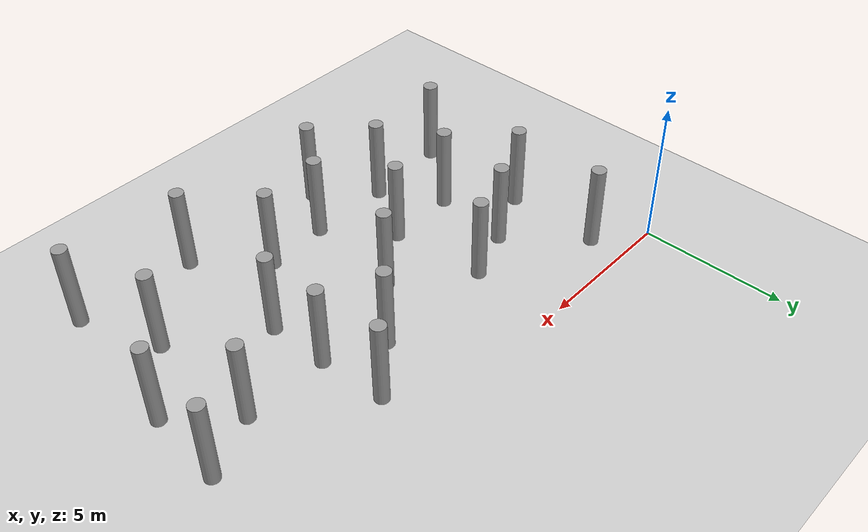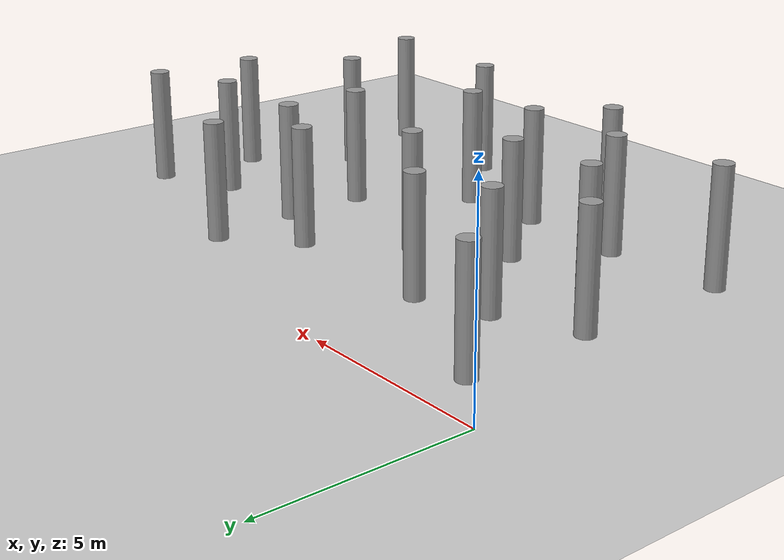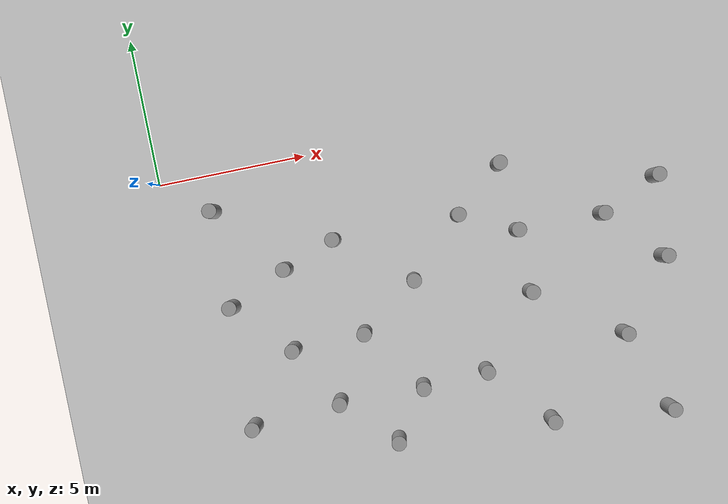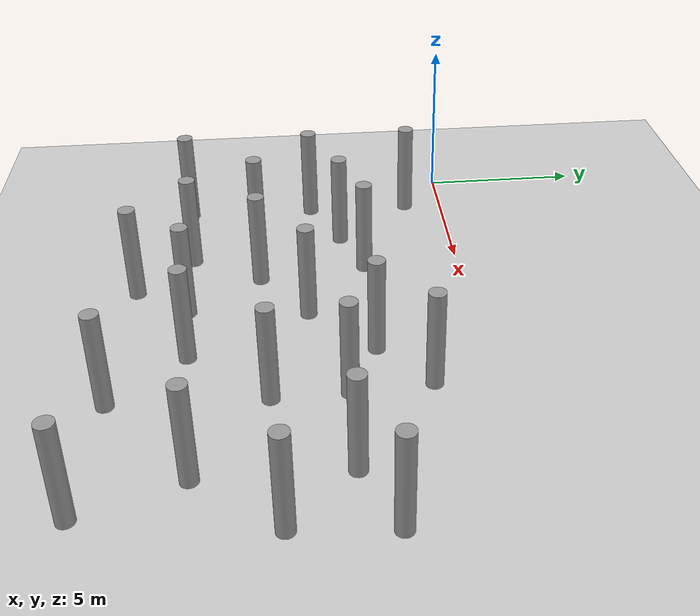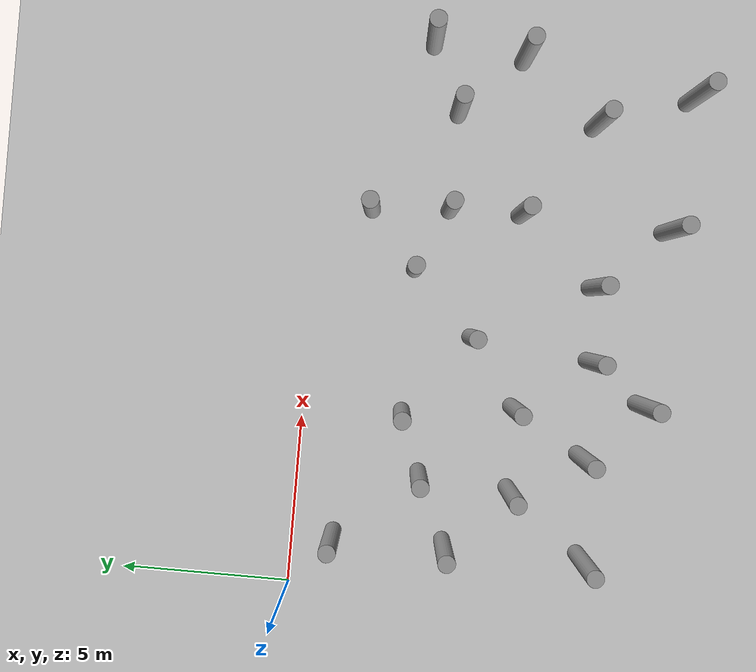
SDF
<sdf version="1.6">
 <world name="default">
  <model name="ground_plane">
   <static>1</static>
   <link name="link">
    <collision name="collision">
     <geometry><plane><normal>0 0 1</normal><size>100 100</size></plane></geometry>
     <surface><friction><ode><mu>100</mu><mu2>50</mu2></ode></friction></surface>
    </collision>
    <visual name="visual">
     <cast_shadows>0</cast_shadows>
     <geometry><plane><normal>0 0 1</normal><size>100 100</size></plane></geometry>
     <material>
      <script><uri>file://media/materials/scripts/gazebo.material</uri><name>Gazebo/Grey</name></script>
     </material>
    </visual>
   </link>
  </model>
  <model name="LjjForest">
   <link name="link_0">
    <inertial>
     <mass>1</mass>
     <inertia><ixx>0.145833</ixx><ixy>0</ixy><ixz>0</ixz><iyy>0.145833</iyy><iyz>0</iyz><izz>0.125</izz></inertia>
    </inertial>
    <pose>-5.02717 0.116957 0 0 -0 0</pose>
    <visual name="visual">
     <geometry><cylinder><radius>0.25</radius><length>3</length></cylinder></geometry>
     <material>
      <lighting>1</lighting>
      <script><uri>file://media/materials/scripts/gazebo.material</uri><name>Gazebo/Grey</name></script>
      <shader type="vertex"><normal_map>__default__</normal_map></shader>
      <ambient>0.3 0.3 0.3 1</ambient>
      <diffuse>0.7 0.7 0.7 1</diffuse>
      <specular>0.01 0.01 0.01 1</specular>
      <emissive>0 0 0 1</emissive>
     </material>
    </visual>
    <collision name="collision">
     <geometry><cylinder><radius>0.25</radius><length>3</length></cylinder></geometry>
     <surface>
      <friction>
       <ode><mu>1</mu><mu2>1</mu2><fdir1>0 0 0</fdir1><slip1>0</slip1><slip2>0</slip2></ode>
       <torsional>
        <coefficient>1</coefficient>
        <patch_radius>0</patch_radius>
        <surface_radius>0</surface_radius>
        <use_patch_radius>1</use_patch_radius>
        <ode><slip>0</slip></ode>
       </torsional>
      </friction>
      <bounce><restitution_coefficient>0</restitution_coefficient><threshold>1e+06</threshold></bounce>
      <contact>
       <collide_without_contact>0</collide_without_contact>
       <collide_without_contact_bitmask>1</collide_without_contact_bitmask>
       <collide_bitmask>1</collide_bitmask>
       <ode>
        <soft_cfm>0</soft_cfm>
        <soft_erp>0.2</soft_erp>
        <kp>1e+13</kp>
        <kd>1</kd>
        <max_vel>0.01</max_vel>
        <min_depth>0</min_depth>
       </ode>
       <bullet>
        <split_impulse>1</split_impulse>
        <split_impulse_penetration_threshold>-0.01</split_impulse_penetration_threshold>
        <soft_cfm>0</soft_cfm>
        <soft_erp>0.2</soft_erp>
        <kp>1e+13</kp>
        <kd>1</kd>
       </bullet>
      </contact>
     </surface>
    </collision>
   </link>
   <link name="link_0_clone_1">
    <inertial>
     <mass>1</mass>
     <inertia><ixx>0.145833</ixx><ixy>0</ixy><ixz>0</ixz><iyy>0.145833</iyy><iyz>0</iyz><izz>0.125</izz></inertia>
    </inertial>
    <pose>-1.2394 -1.64814 0 0 -0 0</pose>
    <visual name="visual">
     <geometry><cylinder><radius>0.25</radius><length>3</length></cylinder></geometry>
     <material>
      <lighting>1</lighting>
      <script><uri>file://media/materials/scripts/gazebo.material</uri><name>Gazebo/Grey</name></script>
      <shader type="vertex"><normal_map>__default__</normal_map></shader>
      <ambient>0.3 0.3 0.3 1</ambient>
      <diffuse>0.7 0.7 0.7 1</diffuse>
      <specular>0.01 0.01 0.01 1</specular>
      <emissive>0 0 0 1</emissive>
     </material>
    </visual>
    <collision name="collision">
     <geometry><cylinder><radius>0.25</radius><length>3</length></cylinder></geometry>
     <surface>
      <friction>
       <ode><mu>1</mu><mu2>1</mu2><fdir1>0 0 0</fdir1><slip1>0</slip1><slip2>0</slip2></ode>
       <torsional>
        <coefficient>1</coefficient>
        <patch_radius>0</patch_radius>
        <surface_radius>0</surface_radius>
        <use_patch_radius>1</use_patch_radius>
        <ode><slip>0</slip></ode>
       </torsional>
      </friction>
      <bounce><restitution_coefficient>0</restitution_coefficient><threshold>1e+06</threshold></bounce>
      <contact>
       <collide_without_contact>0</collide_without_contact>
       <collide_without_contact_bitmask>1</collide_without_contact_bitmask>
       <collide_bitmask>1</collide_bitmask>
       <ode>
        <soft_cfm>0</soft_cfm>
        <soft_erp>0.2</soft_erp>
        <kp>1e+13</kp>
        <kd>1</kd>
        <max_vel>0.01</max_vel>
        <min_depth>0</min_depth>
       </ode>
       <bullet>
        <split_impulse>1</split_impulse>
        <split_impulse_penetration_threshold>-0.01</split_impulse_penetration_threshold>
        <soft_cfm>0</soft_cfm>
        <soft_erp>0.2</soft_erp>
        <kp>1e+13</kp>
        <kd>1</kd>
       </bullet>
      </contact>
     </surface>
    </collision>
   </link>
   <link name="link_0_clone_10">
    <inertial>
     <mass>1</mass>
     <inertia><ixx>0.145833</ixx><ixy>0</ixy><ixz>0</ixz><iyy>0.145833</iyy><iyz>0</iyz><izz>0.125</izz></inertia>
    </inertial>
    <pose>4.92442 -4.7051 0 0 -0 0</pose>
    <visual name="visual">
     <geometry><cylinder><radius>0.25</radius><length>3</length></cylinder></geometry>
     <material>
      <lighting>1</lighting>
      <script><uri>file://media/materials/scripts/gazebo.material</uri><name>Gazebo/Grey</name></script>
      <shader type="vertex"><normal_map>__default__</normal_map></shader>
      <ambient>0.3 0.3 0.3 1</ambient>
      <diffuse>0.7 0.7 0.7 1</diffuse>
      <specular>0.01 0.01 0.01 1</specular>
      <emissive>0 0 0 1</emissive>
     </material>
    </visual>
    <collision name="collision">
     <geometry><cylinder><radius>0.25</radius><length>3</length></cylinder></geometry>
     <surface>
      <friction>
       <ode><mu>1</mu><mu2>1</mu2><fdir1>0 0 0</fdir1><slip1>0</slip1><slip2>0</slip2></ode>
       <torsional>
        <coefficient>1</coefficient>
        <patch_radius>0</patch_radius>
        <surface_radius>0</surface_radius>
        <use_patch_radius>1</use_patch_radius>
        <ode><slip>0</slip></ode>
       </torsional>
      </friction>
      <bounce><restitution_coefficient>0</restitution_coefficient><threshold>1e+06</threshold></bounce>
      <contact>
       <collide_without_contact>0</collide_without_contact>
       <collide_without_contact_bitmask>1</collide_without_contact_bitmask>
       <collide_bitmask>1</collide_bitmask>
       <ode>
        <soft_cfm>0</soft_cfm>
        <soft_erp>0.2</soft_erp>
        <kp>1e+13</kp>
        <kd>1</kd>
        <max_vel>0.01</max_vel>
        <min_depth>0</min_depth>
       </ode>
       <bullet>
        <split_impulse>1</split_impulse>
        <split_impulse_penetration_threshold>-0.01</split_impulse_penetration_threshold>
        <soft_cfm>0</soft_cfm>
        <soft_erp>0.2</soft_erp>
        <kp>1e+13</kp>
        <kd>1</kd>
       </bullet>
      </contact>
     </surface>
    </collision>
   </link>
   <link name="link_0_clone_11">
    <inertial>
     <mass>1</mass>
     <inertia><ixx>0.145833</ixx><ixy>0</ixy><ixz>0</ixz><iyy>0.145833</iyy><iyz>0</iyz><izz>0.125</izz></inertia>
    </inertial>
    <pose>2.92414 -7.00263 0 0 -0 0</pose>
    <visual name="visual">
     <geometry><cylinder><radius>0.25</radius><length>3</length></cylinder></geometry>
     <material>
      <lighting>1</lighting>
      <script><uri>file://media/materials/scripts/gazebo.material</uri><name>Gazebo/Grey</name></script>
      <shader type="vertex"><normal_map>__default__</normal_map></shader>
      <ambient>0.3 0.3 0.3 1</ambient>
      <diffuse>0.7 0.7 0.7 1</diffuse>
      <specular>0.01 0.01 0.01 1</specular>
      <emissive>0 0 0 1</emissive>
     </material>
    </visual>
    <collision name="collision">
     <geometry><cylinder><radius>0.25</radius><length>3</length></cylinder></geometry>
     <surface>
      <friction>
       <ode><mu>1</mu><mu2>1</mu2><fdir1>0 0 0</fdir1><slip1>0</slip1><slip2>0</slip2></ode>
       <torsional>
        <coefficient>1</coefficient>
        <patch_radius>0</patch_radius>
        <surface_radius>0</surface_radius>
        <use_patch_radius>1</use_patch_radius>
        <ode><slip>0</slip></ode>
       </torsional>
      </friction>
      <bounce><restitution_coefficient>0</restitution_coefficient><threshold>1e+06</threshold></bounce>
      <contact>
       <collide_without_contact>0</collide_without_contact>
       <collide_without_contact_bitmask>1</collide_without_contact_bitmask>
       <collide_bitmask>1</collide_bitmask>
       <ode>
        <soft_cfm>0</soft_cfm>
        <soft_erp>0.2</soft_erp>
        <kp>1e+13</kp>
        <kd>1</kd>
        <max_vel>0.01</max_vel>
        <min_depth>0</min_depth>
       </ode>
       <bullet>
        <split_impulse>1</split_impulse>
        <split_impulse_penetration_threshold>-0.01</split_impulse_penetration_threshold>
        <soft_cfm>0</soft_cfm>
        <soft_erp>0.2</soft_erp>
        <kp>1e+13</kp>
        <kd>1</kd>
       </bullet>
      </contact>
     </surface>
    </collision>
   </link>
   <link name="link_0_clone_12">
    <inertial>
     <mass>1</mass>
     <inertia><ixx>0.145833</ixx><ixy>0</ixy><ixz>0</ixz><iyy>0.145833</iyy><iyz>0</iyz><izz>0.125</izz></inertia>
    </inertial>
    <pose>4.76112 -9.06376 0 0 -0 0</pose>
    <visual name="visual">
     <geometry><cylinder><radius>0.25</radius><length>3</length></cylinder></geometry>
     <material>
      <lighting>1</lighting>
      <script><uri>file://media/materials/scripts/gazebo.material</uri><name>Gazebo/Grey</name></script>
      <shader type="vertex"><normal_map>__default__</normal_map></shader>
      <ambient>0.3 0.3 0.3 1</ambient>
      <diffuse>0.7 0.7 0.7 1</diffuse>
      <specular>0.01 0.01 0.01 1</specular>
      <emissive>0 0 0 1</emissive>
     </material>
    </visual>
    <collision name="collision">
     <geometry><cylinder><radius>0.25</radius><length>3</length></cylinder></geometry>
     <surface>
      <friction>
       <ode><mu>1</mu><mu2>1</mu2><fdir1>0 0 0</fdir1><slip1>0</slip1><slip2>0</slip2></ode>
       <torsional>
        <coefficient>1</coefficient>
        <patch_radius>0</patch_radius>
        <surface_radius>0</surface_radius>
        <use_patch_radius>1</use_patch_radius>
        <ode><slip>0</slip></ode>
       </torsional>
      </friction>
      <bounce><restitution_coefficient>0</restitution_coefficient><threshold>1e+06</threshold></bounce>
      <contact>
       <collide_without_contact>0</collide_without_contact>
       <collide_without_contact_bitmask>1</collide_without_contact_bitmask>
       <collide_bitmask>1</collide_bitmask>
       <ode>
        <soft_cfm>0</soft_cfm>
        <soft_erp>0.2</soft_erp>
        <kp>1e+13</kp>
        <kd>1</kd>
        <max_vel>0.01</max_vel>
        <min_depth>0</min_depth>
       </ode>
       <bullet>
        <split_impulse>1</split_impulse>
        <split_impulse_penetration_threshold>-0.01</split_impulse_penetration_threshold>
        <soft_cfm>0</soft_cfm>
        <soft_erp>0.2</soft_erp>
        <kp>1e+13</kp>
        <kd>1</kd>
       </bullet>
      </contact>
     </surface>
    </collision>
   </link>
   <link name="link_0_clone_13">
    <inertial>
     <mass>1</mass>
     <inertia><ixx>0.145833</ixx><ixy>0</ixy><ixz>0</ixz><iyy>0.145833</iyy><iyz>0</iyz><izz>0.125</izz></inertia>
    </inertial>
    <pose>0.731055 -7.10049 0 0 -0 0</pose>
    <visual name="visual">
     <geometry><cylinder><radius>0.25</radius><length>3</length></cylinder></geometry>
     <material>
      <lighting>1</lighting>
      <script><uri>file://media/materials/scripts/gazebo.material</uri><name>Gazebo/Grey</name></script>
      <shader type="vertex"><normal_map>__default__</normal_map></shader>
      <ambient>0.3 0.3 0.3 1</ambient>
      <diffuse>0.7 0.7 0.7 1</diffuse>
      <specular>0.01 0.01 0.01 1</specular>
      <emissive>0 0 0 1</emissive>
     </material>
    </visual>
    <collision name="collision">
     <geometry><cylinder><radius>0.25</radius><length>3</length></cylinder></geometry>
     <surface>
      <friction>
       <ode><mu>1</mu><mu2>1</mu2><fdir1>0 0 0</fdir1><slip1>0</slip1><slip2>0</slip2></ode>
       <torsional>
        <coefficient>1</coefficient>
        <patch_radius>0</patch_radius>
        <surface_radius>0</surface_radius>
        <use_patch_radius>1</use_patch_radius>
        <ode><slip>0</slip></ode>
       </torsional>
      </friction>
      <bounce><restitution_coefficient>0</restitution_coefficient><threshold>1e+06</threshold></bounce>
      <contact>
       <collide_without_contact>0</collide_without_contact>
       <collide_without_contact_bitmask>1</collide_without_contact_bitmask>
       <collide_bitmask>1</collide_bitmask>
       <ode>
        <soft_cfm>0</soft_cfm>
        <soft_erp>0.2</soft_erp>
        <kp>1e+13</kp>
        <kd>1</kd>
        <max_vel>0.01</max_vel>
        <min_depth>0</min_depth>
       </ode>
       <bullet>
        <split_impulse>1</split_impulse>
        <split_impulse_penetration_threshold>-0.01</split_impulse_penetration_threshold>
        <soft_cfm>0</soft_cfm>
        <soft_erp>0.2</soft_erp>
        <kp>1e+13</kp>
        <kd>1</kd>
       </bullet>
      </contact>
     </surface>
    </collision>
   </link>
   <link name="link_0_clone_14">
    <inertial>
     <mass>1</mass>
     <inertia><ixx>0.145833</ixx><ixy>0</ixy><ixz>0</ixz><iyy>0.145833</iyy><iyz>0</iyz><izz>0.125</izz></inertia>
    </inertial>
    <pose>-0.840028 -4.93267 0 0 -0 0</pose>
    <visual name="visual">
     <geometry><cylinder><radius>0.25</radius><length>3</length></cylinder></geometry>
     <material>
      <lighting>1</lighting>
      <script><uri>file://media/materials/scripts/gazebo.material</uri><name>Gazebo/Grey</name></script>
      <shader type="vertex"><normal_map>__default__</normal_map></shader>
      <ambient>0.3 0.3 0.3 1</ambient>
      <diffuse>0.7 0.7 0.7 1</diffuse>
      <specular>0.01 0.01 0.01 1</specular>
      <emissive>0 0 0 1</emissive>
     </material>
    </visual>
    <collision name="collision">
     <geometry><cylinder><radius>0.25</radius><length>3</length></cylinder></geometry>
     <surface>
      <friction>
       <ode><mu>1</mu><mu2>1</mu2><fdir1>0 0 0</fdir1><slip1>0</slip1><slip2>0</slip2></ode>
       <torsional>
        <coefficient>1</coefficient>
        <patch_radius>0</patch_radius>
        <surface_radius>0</surface_radius>
        <use_patch_radius>1</use_patch_radius>
        <ode><slip>0</slip></ode>
       </torsional>
      </friction>
      <bounce><restitution_coefficient>0</restitution_coefficient><threshold>1e+06</threshold></bounce>
      <contact>
       <collide_without_contact>0</collide_without_contact>
       <collide_without_contact_bitmask>1</collide_without_contact_bitmask>
       <collide_bitmask>1</collide_bitmask>
       <ode>
        <soft_cfm>0</soft_cfm>
        <soft_erp>0.2</soft_erp>
        <kp>1e+13</kp>
        <kd>1</kd>
        <max_vel>0.01</max_vel>
        <min_depth>0</min_depth>
       </ode>
       <bullet>
        <split_impulse>1</split_impulse>
        <split_impulse_penetration_threshold>-0.01</split_impulse_penetration_threshold>
        <soft_cfm>0</soft_cfm>
        <soft_erp>0.2</soft_erp>
        <kp>1e+13</kp>
        <kd>1</kd>
       </bullet>
      </contact>
     </surface>
    </collision>
   </link>
   <link name="link_0_clone_15">
    <inertial>
     <mass>1</mass>
     <inertia><ixx>0.145833</ixx><ixy>0</ixy><ixz>0</ixz><iyy>0.145833</iyy><iyz>0</iyz><izz>0.125</izz></inertia>
    </inertial>
    <pose>-3.03254 -2.29236 0 0 -0 0</pose>
    <visual name="visual">
     <geometry><cylinder><radius>0.25</radius><length>3</length></cylinder></geometry>
     <material>
      <lighting>1</lighting>
      <script><uri>file://media/materials/scripts/gazebo.material</uri><name>Gazebo/Grey</name></script>
      <shader type="vertex"><normal_map>__default__</normal_map></shader>
      <ambient>0.3 0.3 0.3 1</ambient>
      <diffuse>0.7 0.7 0.7 1</diffuse>
      <specular>0.01 0.01 0.01 1</specular>
      <emissive>0 0 0 1</emissive>
     </material>
    </visual>
    <collision name="collision">
     <geometry><cylinder><radius>0.25</radius><length>3</length></cylinder></geometry>
     <surface>
      <friction>
       <ode><mu>1</mu><mu2>1</mu2><fdir1>0 0 0</fdir1><slip1>0</slip1><slip2>0</slip2></ode>
       <torsional>
        <coefficient>1</coefficient>
        <patch_radius>0</patch_radius>
        <surface_radius>0</surface_radius>
        <use_patch_radius>1</use_patch_radius>
        <ode><slip>0</slip></ode>
       </torsional>
      </friction>
      <bounce><restitution_coefficient>0</restitution_coefficient><threshold>1e+06</threshold></bounce>
      <contact>
       <collide_without_contact>0</collide_without_contact>
       <collide_without_contact_bitmask>1</collide_without_contact_bitmask>
       <collide_bitmask>1</collide_bitmask>
       <ode>
        <soft_cfm>0</soft_cfm>
        <soft_erp>0.2</soft_erp>
        <kp>1e+13</kp>
        <kd>1</kd>
        <max_vel>0.01</max_vel>
        <min_depth>0</min_depth>
       </ode>
       <bullet>
        <split_impulse>1</split_impulse>
        <split_impulse_penetration_threshold>-0.01</split_impulse_penetration_threshold>
        <soft_cfm>0</soft_cfm>
        <soft_erp>0.2</soft_erp>
        <kp>1e+13</kp>
        <kd>1</kd>
       </bullet>
      </contact>
     </surface>
    </collision>
   </link>
   <link name="link_0_clone_16">
    <inertial>
     <mass>1</mass>
     <inertia><ixx>0.145833</ixx><ixy>0</ixy><ixz>0</ixz><iyy>0.145833</iyy><iyz>0</iyz><izz>0.125</izz></inertia>
    </inertial>
    <pose>-5.04025 -3.1815 0 0 -0 0</pose>
    <visual name="visual">
     <geometry><cylinder><radius>0.25</radius><length>3</length></cylinder></geometry>
     <material>
      <lighting>1</lighting>
      <script><uri>file://media/materials/scripts/gazebo.material</uri><name>Gazebo/Grey</name></script>
      <shader type="vertex"><normal_map>__default__</normal_map></shader>
      <ambient>0.3 0.3 0.3 1</ambient>
      <diffuse>0.7 0.7 0.7 1</diffuse>
      <specular>0.01 0.01 0.01 1</specular>
      <emissive>0 0 0 1</emissive>
     </material>
    </visual>
    <collision name="collision">
     <geometry><cylinder><radius>0.25</radius><length>3</length></cylinder></geometry>
     <surface>
      <friction>
       <ode><mu>1</mu><mu2>1</mu2><fdir1>0 0 0</fdir1><slip1>0</slip1><slip2>0</slip2></ode>
       <torsional>
        <coefficient>1</coefficient>
        <patch_radius>0</patch_radius>
        <surface_radius>0</surface_radius>
        <use_patch_radius>1</use_patch_radius>
        <ode><slip>0</slip></ode>
       </torsional>
      </friction>
      <bounce><restitution_coefficient>0</restitution_coefficient><threshold>1e+06</threshold></bounce>
      <contact>
       <collide_without_contact>0</collide_without_contact>
       <collide_without_contact_bitmask>1</collide_without_contact_bitmask>
       <collide_bitmask>1</collide_bitmask>
       <ode>
        <soft_cfm>0</soft_cfm>
        <soft_erp>0.2</soft_erp>
        <kp>1e+13</kp>
        <kd>1</kd>
        <max_vel>0.01</max_vel>
        <min_depth>0</min_depth>
       </ode>
       <bullet>
        <split_impulse>1</split_impulse>
        <split_impulse_penetration_threshold>-0.01</split_impulse_penetration_threshold>
        <soft_cfm>0</soft_cfm>
        <soft_erp>0.2</soft_erp>
        <kp>1e+13</kp>
        <kd>1</kd>
       </bullet>
      </contact>
     </surface>
    </collision>
   </link>
   <link name="link_0_clone_17">
    <inertial>
     <mass>1</mass>
     <inertia><ixx>0.145833</ixx><ixy>0</ixy><ixz>0</ixz><iyy>0.145833</iyy><iyz>0</iyz><izz>0.125</izz></inertia>
    </inertial>
    <pose>-3.28823 -4.99733 0 0 -0 0</pose>
    <visual name="visual">
     <geometry><cylinder><radius>0.25</radius><length>3</length></cylinder></geometry>
     <material>
      <lighting>1</lighting>
      <script><uri>file://media/materials/scripts/gazebo.material</uri><name>Gazebo/Grey</name></script>
      <shader type="vertex"><normal_map>__default__</normal_map></shader>
      <ambient>0.3 0.3 0.3 1</ambient>
      <diffuse>0.7 0.7 0.7 1</diffuse>
      <specular>0.01 0.01 0.01 1</specular>
      <emissive>0 0 0 1</emissive>
     </material>
    </visual>
    <collision name="collision">
     <geometry><cylinder><radius>0.25</radius><length>3</length></cylinder></geometry>
     <surface>
      <friction>
       <ode><mu>1</mu><mu2>1</mu2><fdir1>0 0 0</fdir1><slip1>0</slip1><slip2>0</slip2></ode>
       <torsional>
        <coefficient>1</coefficient>
        <patch_radius>0</patch_radius>
        <surface_radius>0</surface_radius>
        <use_patch_radius>1</use_patch_radius>
        <ode><slip>0</slip></ode>
       </torsional>
      </friction>
      <bounce><restitution_coefficient>0</restitution_coefficient><threshold>1e+06</threshold></bounce>
      <contact>
       <collide_without_contact>0</collide_without_contact>
       <collide_without_contact_bitmask>1</collide_without_contact_bitmask>
       <collide_bitmask>1</collide_bitmask>
       <ode>
        <soft_cfm>0</soft_cfm>
        <soft_erp>0.2</soft_erp>
        <kp>1e+13</kp>
        <kd>1</kd>
        <max_vel>0.01</max_vel>
        <min_depth>0</min_depth>
       </ode>
       <bullet>
        <split_impulse>1</split_impulse>
        <split_impulse_penetration_threshold>-0.01</split_impulse_penetration_threshold>
        <soft_cfm>0</soft_cfm>
        <soft_erp>0.2</soft_erp>
        <kp>1e+13</kp>
        <kd>1</kd>
       </bullet>
      </contact>
     </surface>
    </collision>
   </link>
   <link name="link_0_clone_18">
    <inertial>
     <mass>1</mass>
     <inertia><ixx>0.145833</ixx><ixy>0</ixy><ixz>0</ixz><iyy>0.145833</iyy><iyz>0</iyz><izz>0.125</izz></inertia>
    </inertial>
    <pose>-2.11118 -7.04502 0 0 -0 0</pose>
    <visual name="visual">
     <geometry><cylinder><radius>0.25</radius><length>3</length></cylinder></geometry>
     <material>
      <lighting>1</lighting>
      <script><uri>file://media/materials/scripts/gazebo.material</uri><name>Gazebo/Grey</name></script>
      <shader type="vertex"><normal_map>__default__</normal_map></shader>
      <ambient>0.3 0.3 0.3 1</ambient>
      <diffuse>0.7 0.7 0.7 1</diffuse>
      <specular>0.01 0.01 0.01 1</specular>
      <emissive>0 0 0 1</emissive>
     </material>
    </visual>
    <collision name="collision">
     <geometry><cylinder><radius>0.25</radius><length>3</length></cylinder></geometry>
     <surface>
      <friction>
       <ode><mu>1</mu><mu2>1</mu2><fdir1>0 0 0</fdir1><slip1>0</slip1><slip2>0</slip2></ode>
       <torsional>
        <coefficient>1</coefficient>
        <patch_radius>0</patch_radius>
        <surface_radius>0</surface_radius>
        <use_patch_radius>1</use_patch_radius>
        <ode><slip>0</slip></ode>
       </torsional>
      </friction>
      <bounce><restitution_coefficient>0</restitution_coefficient><threshold>1e+06</threshold></bounce>
      <contact>
       <collide_without_contact>0</collide_without_contact>
       <collide_without_contact_bitmask>1</collide_without_contact_bitmask>
       <collide_bitmask>1</collide_bitmask>
       <ode>
        <soft_cfm>0</soft_cfm>
        <soft_erp>0.2</soft_erp>
        <kp>1e+13</kp>
        <kd>1</kd>
        <max_vel>0.01</max_vel>
        <min_depth>0</min_depth>
       </ode>
       <bullet>
        <split_impulse>1</split_impulse>
        <split_impulse_penetration_threshold>-0.01</split_impulse_penetration_threshold>
        <soft_cfm>0</soft_cfm>
        <soft_erp>0.2</soft_erp>
        <kp>1e+13</kp>
        <kd>1</kd>
       </bullet>
      </contact>
     </surface>
    </collision>
   </link>
   <link name="link_0_clone_19">
    <inertial>
     <mass>1</mass>
     <inertia><ixx>0.145833</ixx><ixy>0</ixy><ixz>0</ixz><iyy>0.145833</iyy><iyz>0</iyz><izz>0.125</izz></inertia>
    </inertial>
    <pose>-0.4391 -8.69513 0 0 -0 0</pose>
    <visual name="visual">
     <geometry><cylinder><radius>0.25</radius><length>3</length></cylinder></geometry>
     <material>
      <lighting>1</lighting>
      <script><uri>file://media/materials/scripts/gazebo.material</uri><name>Gazebo/Grey</name></script>
      <shader type="vertex"><normal_map>__default__</normal_map></shader>
      <ambient>0.3 0.3 0.3 1</ambient>
      <diffuse>0.7 0.7 0.7 1</diffuse>
      <specular>0.01 0.01 0.01 1</specular>
      <emissive>0 0 0 1</emissive>
     </material>
    </visual>
    <collision name="collision">
     <geometry><cylinder><radius>0.25</radius><length>3</length></cylinder></geometry>
     <surface>
      <friction>
       <ode><mu>1</mu><mu2>1</mu2><fdir1>0 0 0</fdir1><slip1>0</slip1><slip2>0</slip2></ode>
       <torsional>
        <coefficient>1</coefficient>
        <patch_radius>0</patch_radius>
        <surface_radius>0</surface_radius>
        <use_patch_radius>1</use_patch_radius>
        <ode><slip>0</slip></ode>
       </torsional>
      </friction>
      <bounce><restitution_coefficient>0</restitution_coefficient><threshold>1e+06</threshold></bounce>
      <contact>
       <collide_without_contact>0</collide_without_contact>
       <collide_without_contact_bitmask>1</collide_without_contact_bitmask>
       <collide_bitmask>1</collide_bitmask>
       <ode>
        <soft_cfm>0</soft_cfm>
        <soft_erp>0.2</soft_erp>
        <kp>1e+13</kp>
        <kd>1</kd>
        <max_vel>0.01</max_vel>
        <min_depth>0</min_depth>
       </ode>
       <bullet>
        <split_impulse>1</split_impulse>
        <split_impulse_penetration_threshold>-0.01</split_impulse_penetration_threshold>
        <soft_cfm>0</soft_cfm>
        <soft_erp>0.2</soft_erp>
        <kp>1e+13</kp>
        <kd>1</kd>
       </bullet>
      </contact>
     </surface>
    </collision>
   </link>
   <link name="link_0_clone_22">
    <inertial>
     <mass>1</mass>
     <inertia><ixx>0.145833</ixx><ixy>0</ixy><ixz>0</ixz><iyy>0.145833</iyy><iyz>0</iyz><izz>0.125</izz></inertia>
    </inertial>
    <pose>-5.1094 -7.26741 0 0 -0 0</pose>
    <visual name="visual">
     <geometry><cylinder><radius>0.25</radius><length>3</length></cylinder></geometry>
     <material>
      <lighting>1</lighting>
      <script><uri>file://media/materials/scripts/gazebo.material</uri><name>Gazebo/Grey</name></script>
      <shader type="vertex"><normal_map>__default__</normal_map></shader>
      <ambient>0.3 0.3 0.3 1</ambient>
      <diffuse>0.7 0.7 0.7 1</diffuse>
      <specular>0.01 0.01 0.01 1</specular>
      <emissive>0 0 0 1</emissive>
     </material>
    </visual>
    <collision name="collision">
     <geometry><cylinder><radius>0.25</radius><length>3</length></cylinder></geometry>
     <surface>
      <friction>
       <ode><mu>1</mu><mu2>1</mu2><fdir1>0 0 0</fdir1><slip1>0</slip1><slip2>0</slip2></ode>
       <torsional>
        <coefficient>1</coefficient>
        <patch_radius>0</patch_radius>
        <surface_radius>0</surface_radius>
        <use_patch_radius>1</use_patch_radius>
        <ode><slip>0</slip></ode>
       </torsional>
      </friction>
      <bounce><restitution_coefficient>0</restitution_coefficient><threshold>1e+06</threshold></bounce>
      <contact>
       <collide_without_contact>0</collide_without_contact>
       <collide_without_contact_bitmask>1</collide_without_contact_bitmask>
       <collide_bitmask>1</collide_bitmask>
       <ode>
        <soft_cfm>0</soft_cfm>
        <soft_erp>0.2</soft_erp>
        <kp>1e+13</kp>
        <kd>1</kd>
        <max_vel>0.01</max_vel>
        <min_depth>0</min_depth>
       </ode>
       <bullet>
        <split_impulse>1</split_impulse>
        <split_impulse_penetration_threshold>-0.01</split_impulse_penetration_threshold>
        <soft_cfm>0</soft_cfm>
        <soft_erp>0.2</soft_erp>
        <kp>1e+13</kp>
        <kd>1</kd>
       </bullet>
      </contact>
     </surface>
    </collision>
   </link>
   <link name="link_0_clone_32">
    <inertial>
     <mass>1</mass>
     <inertia><ixx>0.145833</ixx><ixy>0</ixy><ixz>0</ixz><iyy>0.145833</iyy><iyz>0</iyz><izz>0.125</izz></inertia>
    </inertial>
    <pose>3.04344 -1.68403 0 0 -0 0</pose>
    <visual name="visual">
     <geometry><cylinder><radius>0.25</radius><length>3</length></cylinder></geometry>
     <material>
      <lighting>1</lighting>
      <script><uri>file://media/materials/scripts/gazebo.material</uri><name>Gazebo/Grey</name></script>
      <shader type="vertex"><normal_map>__default__</normal_map></shader>
      <ambient>0.3 0.3 0.3 1</ambient>
      <diffuse>0.7 0.7 0.7 1</diffuse>
      <specular>0.01 0.01 0.01 1</specular>
      <emissive>0 0 0 1</emissive>
     </material>
    </visual>
    <collision name="collision">
     <geometry><cylinder><radius>0.25</radius><length>3</length></cylinder></geometry>
     <surface>
      <friction>
       <ode><mu>1</mu><mu2>1</mu2><fdir1>0 0 0</fdir1><slip1>0</slip1><slip2>0</slip2></ode>
       <torsional>
        <coefficient>1</coefficient>
        <patch_radius>0</patch_radius>
        <surface_radius>0</surface_radius>
        <use_patch_radius>1</use_patch_radius>
        <ode><slip>0</slip></ode>
       </torsional>
      </friction>
      <bounce><restitution_coefficient>0</restitution_coefficient><threshold>1e+06</threshold></bounce>
      <contact>
       <collide_without_contact>0</collide_without_contact>
       <collide_without_contact_bitmask>1</collide_without_contact_bitmask>
       <collide_bitmask>1</collide_bitmask>
       <ode>
        <soft_cfm>0</soft_cfm>
        <soft_erp>0.2</soft_erp>
        <kp>1e+13</kp>
        <kd>1</kd>
        <max_vel>0.01</max_vel>
        <min_depth>0</min_depth>
       </ode>
       <bullet>
        <split_impulse>1</split_impulse>
        <split_impulse_penetration_threshold>-0.01</split_impulse_penetration_threshold>
        <soft_cfm>0</soft_cfm>
        <soft_erp>0.2</soft_erp>
        <kp>1e+13</kp>
        <kd>1</kd>
       </bullet>
      </contact>
     </surface>
    </collision>
   </link>
   <link name="link_0_clone_7">
    <inertial>
     <mass>1</mass>
     <inertia><ixx>0.145833</ixx><ixy>0</ixy><ixz>0</ixz><iyy>0.145833</iyy><iyz>0</iyz><izz>0.125</izz></inertia>
    </inertial>
    <pose>1.14853 -3.52752 0 0 -0 0</pose>
    <visual name="visual">
     <geometry><cylinder><radius>0.25</radius><length>3</length></cylinder></geometry>
     <material>
      <lighting>1</lighting>
      <script><uri>file://media/materials/scripts/gazebo.material</uri><name>Gazebo/Grey</name></script>
      <shader type="vertex"><normal_map>__default__</normal_map></shader>
      <ambient>0.3 0.3 0.3 1</ambient>
      <diffuse>0.7 0.7 0.7 1</diffuse>
      <specular>0.01 0.01 0.01 1</specular>
      <emissive>0 0 0 1</emissive>
     </material>
    </visual>
    <collision name="collision">
     <geometry><cylinder><radius>0.25</radius><length>3</length></cylinder></geometry>
     <surface>
      <friction>
       <ode><mu>1</mu><mu2>1</mu2><fdir1>0 0 0</fdir1><slip1>0</slip1><slip2>0</slip2></ode>
       <torsional>
        <coefficient>1</coefficient>
        <patch_radius>0</patch_radius>
        <surface_radius>0</surface_radius>
        <use_patch_radius>1</use_patch_radius>
        <ode><slip>0</slip></ode>
       </torsional>
      </friction>
      <bounce><restitution_coefficient>0</restitution_coefficient><threshold>1e+06</threshold></bounce>
      <contact>
       <collide_without_contact>0</collide_without_contact>
       <collide_without_contact_bitmask>1</collide_without_contact_bitmask>
       <collide_bitmask>1</collide_bitmask>
       <ode>
        <soft_cfm>0</soft_cfm>
        <soft_erp>0.2</soft_erp>
        <kp>1e+13</kp>
        <kd>1</kd>
        <max_vel>0.01</max_vel>
        <min_depth>0</min_depth>
       </ode>
       <bullet>
        <split_impulse>1</split_impulse>
        <split_impulse_penetration_threshold>-0.01</split_impulse_penetration_threshold>
        <soft_cfm>0</soft_cfm>
        <soft_erp>0.2</soft_erp>
        <kp>1e+13</kp>
        <kd>1</kd>
       </bullet>
      </contact>
     </surface>
    </collision>
   </link>
   <link name="link_0_clone_8">
    <inertial>
     <mass>1</mass>
     <inertia><ixx>0.145833</ixx><ixy>0</ixy><ixz>0</ixz><iyy>0.145833</iyy><iyz>0</iyz><izz>0.125</izz></inertia>
    </inertial>
    <pose>4.72743 -0.273206 0 0 -0 0</pose>
    <visual name="visual">
     <geometry><cylinder><radius>0.25</radius><length>3</length></cylinder></geometry>
     <material>
      <lighting>1</lighting>
      <script><uri>file://media/materials/scripts/gazebo.material</uri><name>Gazebo/Grey</name></script>
      <shader type="vertex"><normal_map>__default__</normal_map></shader>
      <ambient>0.3 0.3 0.3 1</ambient>
      <diffuse>0.7 0.7 0.7 1</diffuse>
      <specular>0.01 0.01 0.01 1</specular>
      <emissive>0 0 0 1</emissive>
     </material>
    </visual>
    <collision name="collision">
     <geometry><cylinder><radius>0.25</radius><length>3</length></cylinder></geometry>
     <surface>
      <friction>
       <ode><mu>1</mu><mu2>1</mu2><fdir1>0 0 0</fdir1><slip1>0</slip1><slip2>0</slip2></ode>
       <torsional>
        <coefficient>1</coefficient>
        <patch_radius>0</patch_radius>
        <surface_radius>0</surface_radius>
        <use_patch_radius>1</use_patch_radius>
        <ode><slip>0</slip></ode>
       </torsional>
      </friction>
      <bounce><restitution_coefficient>0</restitution_coefficient><threshold>1e+06</threshold></bounce>
      <contact>
       <collide_without_contact>0</collide_without_contact>
       <collide_without_contact_bitmask>1</collide_without_contact_bitmask>
       <collide_bitmask>1</collide_bitmask>
       <ode>
        <soft_cfm>0</soft_cfm>
        <soft_erp>0.2</soft_erp>
        <kp>1e+13</kp>
        <kd>1</kd>
        <max_vel>0.01</max_vel>
        <min_depth>0</min_depth>
       </ode>
       <bullet>
        <split_impulse>1</split_impulse>
        <split_impulse_penetration_threshold>-0.01</split_impulse_penetration_threshold>
        <soft_cfm>0</soft_cfm>
        <soft_erp>0.2</soft_erp>
        <kp>1e+13</kp>
        <kd>1</kd>
       </bullet>
      </contact>
     </surface>
    </collision>
   </link>
   <link name="link_0_clone_9">
    <inertial>
     <mass>1</mass>
     <inertia><ixx>0.145833</ixx><ixy>0</ixy><ixz>0</ixz><iyy>0.145833</iyy><iyz>0</iyz><izz>0.125</izz></inertia>
    </inertial>
    <pose>4.89769 -2.58143 0 0 -0 0</pose>
    <visual name="visual">
     <geometry><cylinder><radius>0.25</radius><length>3</length></cylinder></geometry>
     <material>
      <lighting>1</lighting>
      <script><uri>file://media/materials/scripts/gazebo.material</uri><name>Gazebo/Grey</name></script>
      <shader type="vertex"><normal_map>__default__</normal_map></shader>
      <ambient>0.3 0.3 0.3 1</ambient>
      <diffuse>0.7 0.7 0.7 1</diffuse>
      <specular>0.01 0.01 0.01 1</specular>
      <emissive>0 0 0 1</emissive>
     </material>
    </visual>
    <collision name="collision">
     <geometry><cylinder><radius>0.25</radius><length>3</length></cylinder></geometry>
     <surface>
      <friction>
       <ode><mu>1</mu><mu2>1</mu2><fdir1>0 0 0</fdir1><slip1>0</slip1><slip2>0</slip2></ode>
       <torsional>
        <coefficient>1</coefficient>
        <patch_radius>0</patch_radius>
        <surface_radius>0</surface_radius>
        <use_patch_radius>1</use_patch_radius>
        <ode><slip>0</slip></ode>
       </torsional>
      </friction>
      <bounce><restitution_coefficient>0</restitution_coefficient><threshold>1e+06</threshold></bounce>
      <contact>
       <collide_without_contact>0</collide_without_contact>
       <collide_without_contact_bitmask>1</collide_without_contact_bitmask>
       <collide_bitmask>1</collide_bitmask>
       <ode>
        <soft_cfm>0</soft_cfm>
        <soft_erp>0.2</soft_erp>
        <kp>1e+13</kp>
        <kd>1</kd>
        <max_vel>0.01</max_vel>
        <min_depth>0</min_depth>
       </ode>
       <bullet>
        <split_impulse>1</split_impulse>
        <split_impulse_penetration_threshold>-0.01</split_impulse_penetration_threshold>
        <soft_cfm>0</soft_cfm>
        <soft_erp>0.2</soft_erp>
        <kp>1e+13</kp>
        <kd>1</kd>
       </bullet>
      </contact>
     </surface>
    </collision>
   </link>
   <static>0</static>
   <pose>6.66629 -1.33639 1.49999 0 -0 0.002431</pose>
  </model>
  <model name="LjjForest_3">
   <link name="link_0_clone_15">
    <inertial>
     <mass>1</mass>
     <inertia><ixx>0.145833</ixx><ixy>0</ixy><ixz>0</ixz><iyy>0.145833</iyy><iyz>0</iyz><izz>0.125</izz></inertia>
    </inertial>
    <pose>-3.03254 -2.29236 0 0 -0 0</pose>
    <visual name="visual">
     <geometry><cylinder><radius>0.25</radius><length>3</length></cylinder></geometry>
     <material>
      <lighting>1</lighting>
      <script><uri>file://media/materials/scripts/gazebo.material</uri><name>Gazebo/Grey</name></script>
      <shader type="vertex"><normal_map>__default__</normal_map></shader>
      <ambient>0.3 0.3 0.3 1</ambient>
      <diffuse>0.7 0.7 0.7 1</diffuse>
      <specular>0.01 0.01 0.01 1</specular>
      <emissive>0 0 0 1</emissive>
     </material>
    </visual>
    <collision name="collision">
     <geometry><cylinder><radius>0.25</radius><length>3</length></cylinder></geometry>
     <surface>
      <friction>
       <ode><mu>1</mu><mu2>1</mu2><fdir1>0 0 0</fdir1><slip1>0</slip1><slip2>0</slip2></ode>
       <torsional>
        <coefficient>1</coefficient>
        <patch_radius>0</patch_radius>
        <surface_radius>0</surface_radius>
        <use_patch_radius>1</use_patch_radius>
        <ode><slip>0</slip></ode>
       </torsional>
      </friction>
      <bounce><restitution_coefficient>0</restitution_coefficient><threshold>1e+06</threshold></bounce>
      <contact>
       <collide_without_contact>0</collide_without_contact>
       <collide_without_contact_bitmask>1</collide_without_contact_bitmask>
       <collide_bitmask>1</collide_bitmask>
       <ode>
        <soft_cfm>0</soft_cfm>
        <soft_erp>0.2</soft_erp>
        <kp>1e+13</kp>
        <kd>1</kd>
        <max_vel>0.01</max_vel>
        <min_depth>0</min_depth>
       </ode>
       <bullet>
        <split_impulse>1</split_impulse>
        <split_impulse_penetration_threshold>-0.01</split_impulse_penetration_threshold>
        <soft_cfm>0</soft_cfm>
        <soft_erp>0.2</soft_erp>
        <kp>1e+13</kp>
        <kd>1</kd>
       </bullet>
      </contact>
     </surface>
    </collision>
   </link>
   <link name="link_0_clone_16">
    <inertial>
     <mass>1</mass>
     <inertia><ixx>0.145833</ixx><ixy>0</ixy><ixz>0</ixz><iyy>0.145833</iyy><iyz>0</iyz><izz>0.125</izz></inertia>
    </inertial>
    <pose>-5.04025 -3.1815 0 0 -0 0</pose>
    <visual name="visual">
     <geometry><cylinder><radius>0.25</radius><length>3</length></cylinder></geometry>
     <material>
      <lighting>1</lighting>
      <script><uri>file://media/materials/scripts/gazebo.material</uri><name>Gazebo/Grey</name></script>
      <shader type="vertex"><normal_map>__default__</normal_map></shader>
      <ambient>0.3 0.3 0.3 1</ambient>
      <diffuse>0.7 0.7 0.7 1</diffuse>
      <specular>0.01 0.01 0.01 1</specular>
      <emissive>0 0 0 1</emissive>
     </material>
    </visual>
    <collision name="collision">
     <geometry><cylinder><radius>0.25</radius><length>3</length></cylinder></geometry>
     <surface>
      <friction>
       <ode><mu>1</mu><mu2>1</mu2><fdir1>0 0 0</fdir1><slip1>0</slip1><slip2>0</slip2></ode>
       <torsional>
        <coefficient>1</coefficient>
        <patch_radius>0</patch_radius>
        <surface_radius>0</surface_radius>
        <use_patch_radius>1</use_patch_radius>
        <ode><slip>0</slip></ode>
       </torsional>
      </friction>
      <bounce><restitution_coefficient>0</restitution_coefficient><threshold>1e+06</threshold></bounce>
      <contact>
       <collide_without_contact>0</collide_without_contact>
       <collide_without_contact_bitmask>1</collide_without_contact_bitmask>
       <collide_bitmask>1</collide_bitmask>
       <ode>
        <soft_cfm>0</soft_cfm>
        <soft_erp>0.2</soft_erp>
        <kp>1e+13</kp>
        <kd>1</kd>
        <max_vel>0.01</max_vel>
        <min_depth>0</min_depth>
       </ode>
       <bullet>
        <split_impulse>1</split_impulse>
        <split_impulse_penetration_threshold>-0.01</split_impulse_penetration_threshold>
        <soft_cfm>0</soft_cfm>
        <soft_erp>0.2</soft_erp>
        <kp>1e+13</kp>
        <kd>1</kd>
       </bullet>
      </contact>
     </surface>
    </collision>
   </link>
   <link name="link_0_clone_17">
    <inertial>
     <mass>1</mass>
     <inertia><ixx>0.145833</ixx><ixy>0</ixy><ixz>0</ixz><iyy>0.145833</iyy><iyz>0</iyz><izz>0.125</izz></inertia>
    </inertial>
    <pose>-3.28823 -4.99733 0 0 -0 0</pose>
    <visual name="visual">
     <geometry><cylinder><radius>0.25</radius><length>3</length></cylinder></geometry>
     <material>
      <lighting>1</lighting>
      <script><uri>file://media/materials/scripts/gazebo.material</uri><name>Gazebo/Grey</name></script>
      <shader type="vertex"><normal_map>__default__</normal_map></shader>
      <ambient>0.3 0.3 0.3 1</ambient>
      <diffuse>0.7 0.7 0.7 1</diffuse>
      <specular>0.01 0.01 0.01 1</specular>
      <emissive>0 0 0 1</emissive>
     </material>
    </visual>
    <collision name="collision">
     <geometry><cylinder><radius>0.25</radius><length>3</length></cylinder></geometry>
     <surface>
      <friction>
       <ode><mu>1</mu><mu2>1</mu2><fdir1>0 0 0</fdir1><slip1>0</slip1><slip2>0</slip2></ode>
       <torsional>
        <coefficient>1</coefficient>
        <patch_radius>0</patch_radius>
        <surface_radius>0</surface_radius>
        <use_patch_radius>1</use_patch_radius>
        <ode><slip>0</slip></ode>
       </torsional>
      </friction>
      <bounce><restitution_coefficient>0</restitution_coefficient><threshold>1e+06</threshold></bounce>
      <contact>
       <collide_without_contact>0</collide_without_contact>
       <collide_without_contact_bitmask>1</collide_without_contact_bitmask>
       <collide_bitmask>1</collide_bitmask>
       <ode>
        <soft_cfm>0</soft_cfm>
        <soft_erp>0.2</soft_erp>
        <kp>1e+13</kp>
        <kd>1</kd>
        <max_vel>0.01</max_vel>
        <min_depth>0</min_depth>
       </ode>
       <bullet>
        <split_impulse>1</split_impulse>
        <split_impulse_penetration_threshold>-0.01</split_impulse_penetration_threshold>
        <soft_cfm>0</soft_cfm>
        <soft_erp>0.2</soft_erp>
        <kp>1e+13</kp>
        <kd>1</kd>
       </bullet>
      </contact>
     </surface>
    </collision>
   </link>
   <link name="link_0_clone_21">
    <inertial>
     <mass>1</mass>
     <inertia><ixx>0.145833</ixx><ixy>0</ixy><ixz>0</ixz><iyy>0.145833</iyy><iyz>0</iyz><izz>0.125</izz></inertia>
    </inertial>
    <pose>-4.11405 -10.0375 0 0 -0 0</pose>
    <visual name="visual">
     <geometry><cylinder><radius>0.25</radius><length>3</length></cylinder></geometry>
     <material>
      <lighting>1</lighting>
      <script><uri>file://media/materials/scripts/gazebo.material</uri><name>Gazebo/Grey</name></script>
      <shader type="vertex"><normal_map>__default__</normal_map></shader>
      <ambient>0.3 0.3 0.3 1</ambient>
      <diffuse>0.7 0.7 0.7 1</diffuse>
      <specular>0.01 0.01 0.01 1</specular>
      <emissive>0 0 0 1</emissive>
     </material>
    </visual>
    <collision name="collision">
     <geometry><cylinder><radius>0.25</radius><length>3</length></cylinder></geometry>
     <surface>
      <friction>
       <ode><mu>1</mu><mu2>1</mu2><fdir1>0 0 0</fdir1><slip1>0</slip1><slip2>0</slip2></ode>
       <torsional>
        <coefficient>1</coefficient>
        <patch_radius>0</patch_radius>
        <surface_radius>0</surface_radius>
        <use_patch_radius>1</use_patch_radius>
        <ode><slip>0</slip></ode>
       </torsional>
      </friction>
      <bounce><restitution_coefficient>0</restitution_coefficient><threshold>1e+06</threshold></bounce>
      <contact>
       <collide_without_contact>0</collide_without_contact>
       <collide_without_contact_bitmask>1</collide_without_contact_bitmask>
       <collide_bitmask>1</collide_bitmask>
       <ode>
        <soft_cfm>0</soft_cfm>
        <soft_erp>0.2</soft_erp>
        <kp>1e+13</kp>
        <kd>1</kd>
        <max_vel>0.01</max_vel>
        <min_depth>0</min_depth>
       </ode>
       <bullet>
        <split_impulse>1</split_impulse>
        <split_impulse_penetration_threshold>-0.01</split_impulse_penetration_threshold>
        <soft_cfm>0</soft_cfm>
        <soft_erp>0.2</soft_erp>
        <kp>1e+13</kp>
        <kd>1</kd>
       </bullet>
      </contact>
     </surface>
    </collision>
   </link>
   <link name="link_0_clone_22">
    <inertial>
     <mass>1</mass>
     <inertia><ixx>0.145833</ixx><ixy>0</ixy><ixz>0</ixz><iyy>0.145833</iyy><iyz>0</iyz><izz>0.125</izz></inertia>
    </inertial>
    <pose>-5.1094 -7.26741 0 0 -0 0</pose>
    <visual name="visual">
     <geometry><cylinder><radius>0.25</radius><length>3</length></cylinder></geometry>
     <material>
      <lighting>1</lighting>
      <script><uri>file://media/materials/scripts/gazebo.material</uri><name>Gazebo/Grey</name></script>
      <shader type="vertex"><normal_map>__default__</normal_map></shader>
      <ambient>0.3 0.3 0.3 1</ambient>
      <diffuse>0.7 0.7 0.7 1</diffuse>
      <specular>0.01 0.01 0.01 1</specular>
      <emissive>0 0 0 1</emissive>
     </material>
    </visual>
    <collision name="collision">
     <geometry><cylinder><radius>0.25</radius><length>3</length></cylinder></geometry>
     <surface>
      <friction>
       <ode><mu>1</mu><mu2>1</mu2><fdir1>0 0 0</fdir1><slip1>0</slip1><slip2>0</slip2></ode>
       <torsional>
        <coefficient>1</coefficient>
        <patch_radius>0</patch_radius>
        <surface_radius>0</surface_radius>
        <use_patch_radius>1</use_patch_radius>
        <ode><slip>0</slip></ode>
       </torsional>
      </friction>
      <bounce><restitution_coefficient>0</restitution_coefficient><threshold>1e+06</threshold></bounce>
      <contact>
       <collide_without_contact>0</collide_without_contact>
       <collide_without_contact_bitmask>1</collide_without_contact_bitmask>
       <collide_bitmask>1</collide_bitmask>
       <ode>
        <soft_cfm>0</soft_cfm>
        <soft_erp>0.2</soft_erp>
        <kp>1e+13</kp>
        <kd>1</kd>
        <max_vel>0.01</max_vel>
        <min_depth>0</min_depth>
       </ode>
       <bullet>
        <split_impulse>1</split_impulse>
        <split_impulse_penetration_threshold>-0.01</split_impulse_penetration_threshold>
        <soft_cfm>0</soft_cfm>
        <soft_erp>0.2</soft_erp>
        <kp>1e+13</kp>
        <kd>1</kd>
       </bullet>
      </contact>
     </surface>
    </collision>
   </link>
   <static>0</static>
   <pose>19.5094 -0.740182 1.49999 0 -0 0.002244</pose>
  </model>
 </world>
</sdf>
